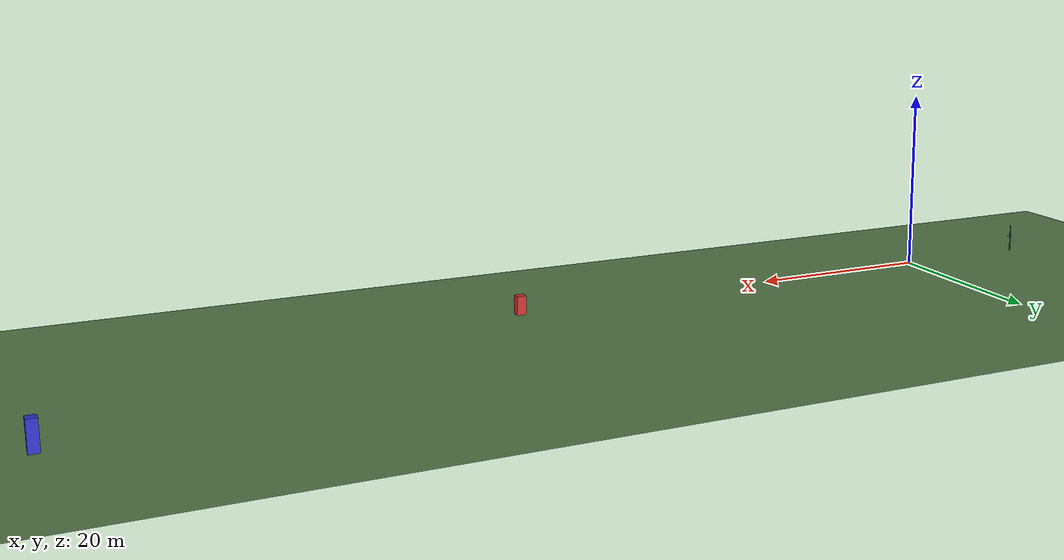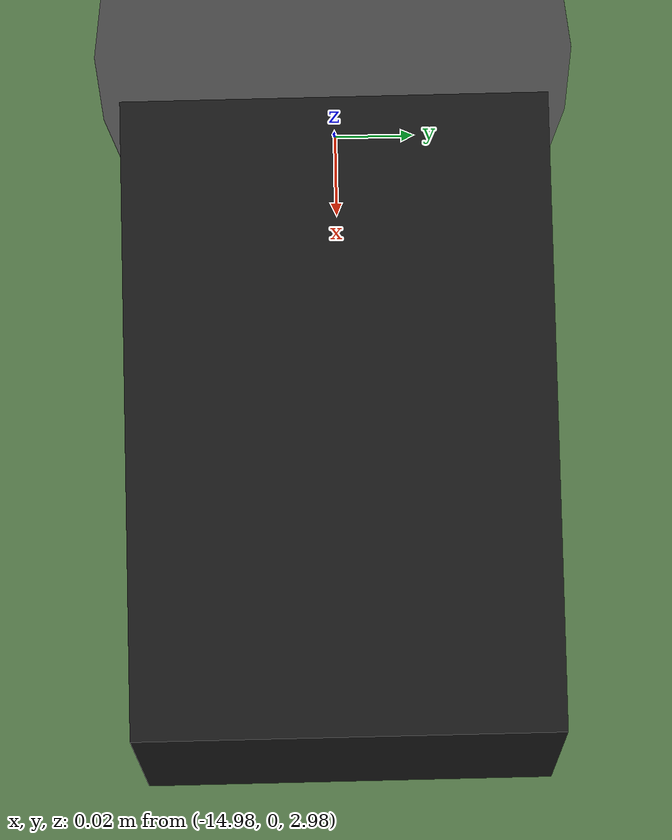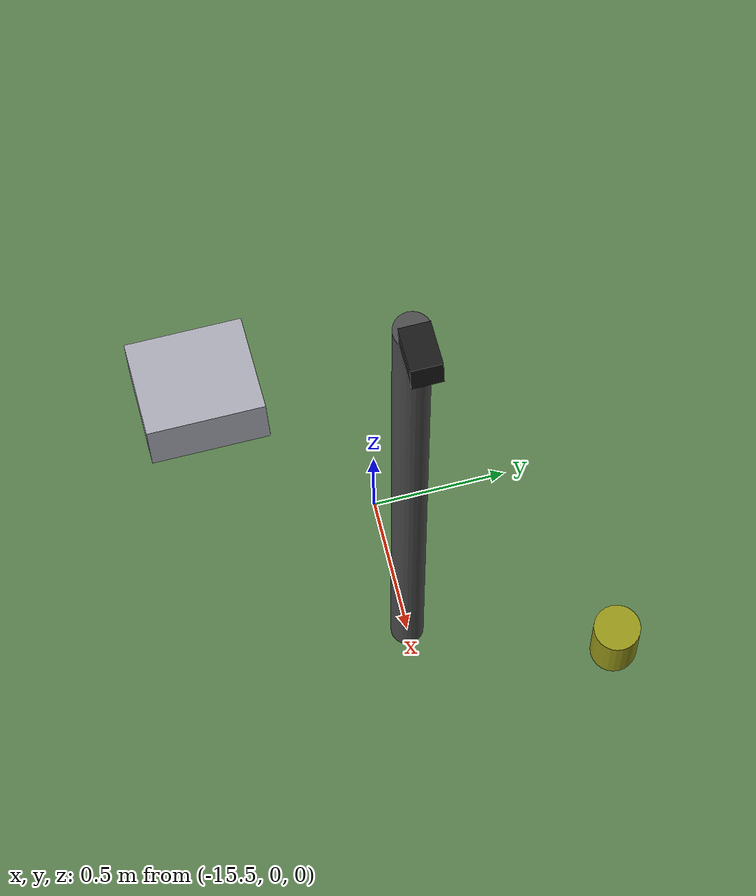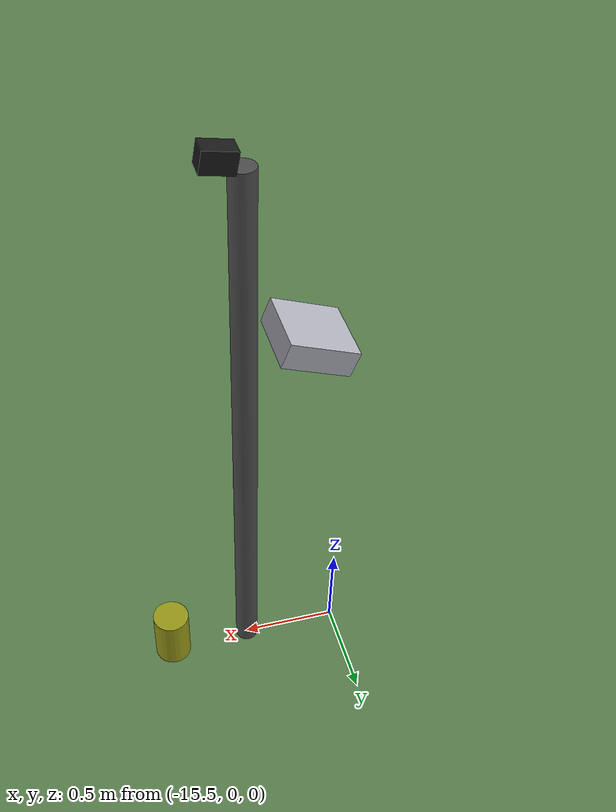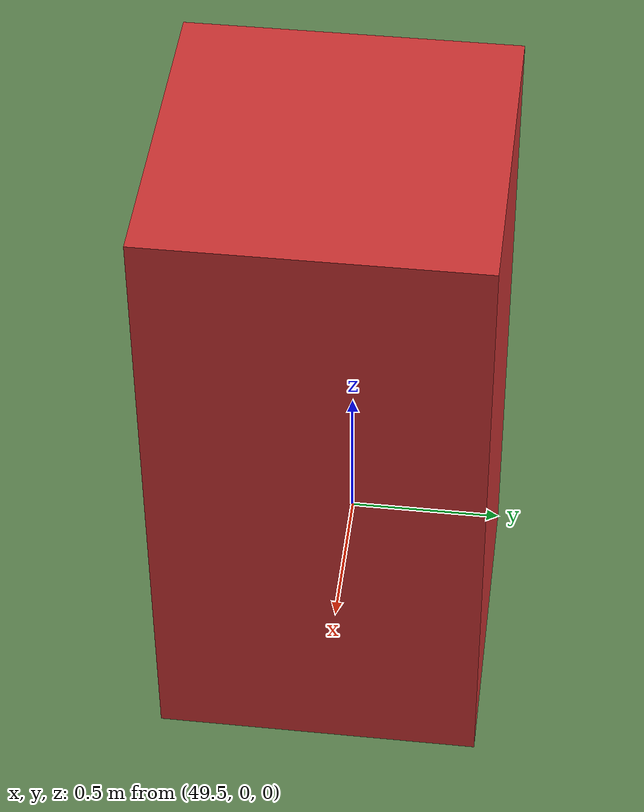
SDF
<?xml version="1.0" ?>
<sdf version="1.9">
  <world name="detection_range">
    <physics name="1ms" type="ignored">
      <max_step_size>0.004</max_step_size>
      <real_time_factor>1.0</real_time_factor>
    </physics>

    <plugin filename="gz-sim-physics-system" name="gz::sim::systems::Physics"/>
    <plugin filename="gz-sim-user-commands-system" name="gz::sim::systems::UserCommands"/>
    <plugin filename="gz-sim-scene-broadcaster-system" name="gz::sim::systems::SceneBroadcaster"/>
    <plugin filename="gz-sim-sensors-system" name="gz::sim::systems::Sensors">
      <render_engine>ogre2</render_engine>
    </plugin>
    <plugin filename="gz-sim-imu-system" name="gz::sim::systems::Imu"/>

    <scene>
      <ambient>0.6 0.6 0.6</ambient>
      <background>0.65 0.78 0.9</background>
      <grid>false</grid>
    </scene>

    <light type="directional" name="sun">
      <cast_shadows>true</cast_shadows>
      <pose>0 0 10 0 0 0</pose>
      <diffuse>0.9 0.9 0.85 1</diffuse>
      <specular>0.2 0.2 0.2 1</specular>
      <direction>-0.5 0.1 -0.9</direction>
    </light>

    <model name="ground_plane">
      <static>true</static>
      <link name="link">
        <collision name="collision">
          <geometry><plane><normal>0 0 1</normal><size>500 500</size></plane></geometry>
        </collision>
        <visual name="visual">
          <geometry><plane><normal>0 0 1</normal><size>500 500</size></plane></geometry>
          <material>
            <ambient>0.35 0.5 0.3 1</ambient>
            <diffuse>0.35 0.5 0.3 1</diffuse>
          </material>
        </visual>
      </link>
    </model>

    <!-- Visual reference objects so camera frames have background structure -->
    <model name="marker_50m">
      <static>true</static>
      <pose>50 0 1 0 0 0</pose>
      <link name="link">
        <visual name="visual">
          <geometry><box><size>1 1 2</size></box></geometry>
          <material><ambient>0.8 0.2 0.2 1</ambient><diffuse>0.8 0.2 0.2 1</diffuse></material>
        </visual>
      </link>
    </model>
    <model name="marker_100m">
      <static>true</static>
      <pose>100 20 1.5 0 0 0</pose>
      <link name="link">
        <visual name="visual">
          <geometry><box><size>1 1 3</size></box></geometry>
          <material><ambient>0.2 0.2 0.8 1</ambient><diffuse>0.2 0.2 0.8 1</diffuse></material>
        </visual>
      </link>
    </model>

    <!-- ============ Ground detection station ============ -->
    <!-- Placed 15 m behind the origin (where the drone spawns), looking at
         the patrol volume. Static: it never moves. -->
    <model name="detection_station">
      <static>true</static>
      <pose>-15 0 0 0 0 0</pose>

      <!-- Camera mast -->
      <link name="mast">
        <pose>0 0 1.5 0 0 0</pose>
        <visual name="mast_visual">
          <geometry><cylinder><radius>0.06</radius><length>3.0</length></cylinder></geometry>
          <material><ambient>0.3 0.3 0.3 1</ambient><diffuse>0.3 0.3 0.3 1</diffuse></material>
        </visual>
      </link>

      <!-- Camera head: 3 m up, pitched up ~10 deg toward the patrol volume -->
      <link name="camera_link">
        <pose>0.1 0 3.05 0 -0.17 0</pose>
        <visual name="camera_visual">
          <geometry><box><size>0.15 0.1 0.1</size></box></geometry>
          <material><ambient>0.1 0.1 0.1 1</ambient><diffuse>0.1 0.1 0.1 1</diffuse></material>
        </visual>
        <sensor name="station_camera" type="camera">
          <topic>detection_station/camera</topic>
          <update_rate>15</update_rate>
          <always_on>true</always_on>
          <camera>
            <horizontal_fov>1.047</horizontal_fov>
            <image>
              <width>1280</width>
              <height>720</height>
              <format>R8G8B8</format>
            </image>
            <clip><near>0.1</near><far>1000</far></clip>
          </camera>
        </sensor>
      </link>

      <!-- Microphone representation (no simulated audio in Gazebo).
           Phase 3 will synthesize audio as a function of drone range/velocity
           relative to this pose. -->
      <link name="microphone_link">
        <pose>0.5 0.6 1.0 0 0 0</pose>
        <visual name="mic_visual">
          <geometry><cylinder><radius>0.08</radius><length>0.25</length></cylinder></geometry>
          <material><ambient>0.6 0.6 0.1 1</ambient><diffuse>0.6 0.6 0.1 1</diffuse></material>
        </visual>
      </link>

      <!-- Radar representation. Phase 4 computes range/bearing/elevation/
           radial velocity from ground truth relative to this pose + noise. -->
      <link name="radar_link">
        <pose>-0.5 -0.6 1.6 0 -0.35 0</pose>
        <visual name="radar_visual">
          <geometry><box><size>0.4 0.4 0.15</size></box></geometry>
          <material><ambient>0.7 0.7 0.75 1</ambient><diffuse>0.7 0.7 0.75 1</diffuse></material>
        </visual>
      </link>
    </model>
  </world>
</sdf>
